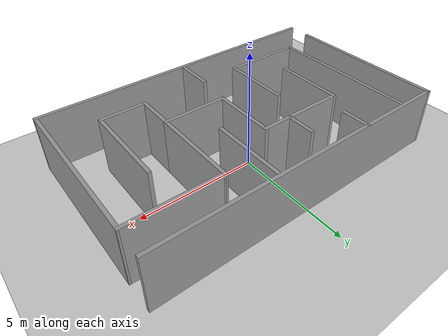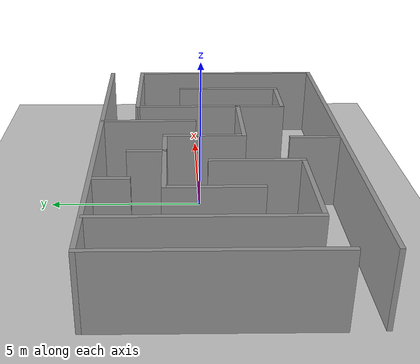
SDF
<sdf version="1.7">
 <world name="default">
  <light name="sun" type="directional">
   <pose>0 0 10 0 -0 0</pose>
   <diffuse>0.8 0.8 0.8 1</diffuse>
   <specular>0.2 0.2 0.2 1</specular>
   <attenuation>
    <range>1000</range>
    <constant>0.9</constant>
    <linear>0.01</linear>
    <quadratic>0.001</quadratic>
   </attenuation>
   <direction>-0.5 0.1 -0.9</direction>
   <spot><inner_angle>0</inner_angle><outer_angle>0</outer_angle><falloff>0</falloff></spot>
  </light>
  <model name="ground_plane">
   <static>1</static>
   <link name="link">
    <collision name="collision">
     <geometry><plane><normal>0 0 1</normal><size>100 100</size></plane></geometry>
     <surface>
      <contact><collide_bitmask>65535</collide_bitmask></contact>
      <friction><ode><mu>100</mu><mu2>50</mu2></ode></friction>
     </surface>
    </collision>
    <visual name="visual">
     <cast_shadows>0</cast_shadows>
     <geometry><plane><normal>0 0 1</normal><size>100 100</size></plane></geometry>
     <material>
      <script><uri>file://media/materials/scripts/gazebo.material</uri><name>Gazebo/Grey</name></script>
     </material>
    </visual>
   </link>
  </model>
  <gravity>0 0 -9.8</gravity>
  <magnetic_field>6e-06 2.3e-05 -4.2e-05</magnetic_field>
  <atmosphere type="adiabatic"/>
  <physics type="ode">
   <max_step_size>0.001</max_step_size>
   <real_time_factor>1</real_time_factor>
   <real_time_update_rate>1000</real_time_update_rate>
  </physics>
  <scene><ambient>0.4 0.4 0.4 1</ambient><background>0.7 0.7 0.7 1</background><shadows>1</shadows></scene>
  <spherical_coordinates>
   <surface_model>EARTH_WGS84</surface_model>
   <latitude_deg>0</latitude_deg>
   <longitude_deg>0</longitude_deg>
   <elevation>0</elevation>
   <heading_deg>0</heading_deg>
  </spherical_coordinates>
  <model name="newWorld">
   <pose>-0.104482 -0.661415 0 0 -0 0</pose>
   <link name="Wall_11">
    <collision name="Wall_11_Collision">
     <geometry><box><size>6.91201 0.15 2.5</size></box></geometry>
     <pose>0 0 1.25 0 -0 0</pose>
    </collision>
    <visual name="Wall_11_Visual">
     <pose>0 0 1.25 0 -0 0</pose>
     <geometry><box><size>6.91201 0.15 2.5</size></box></geometry>
     <material>
      <script><uri>file://media/materials/scripts/gazebo.material</uri><name>Gazebo/Grey</name></script>
      <ambient>1 1 1 1</ambient>
     </material>
     <meta><layer>0</layer></meta>
    </visual>
    <pose>6.56643 -0.597928 0 0 -0 -1.56887</pose>
   </link>
   <link name="Wall_13">
    <collision name="Wall_13_Collision">
     <geometry><box><size>6.5 0.15 2.5</size></box></geometry>
     <pose>0 0 1.25 0 -0 0</pose>
    </collision>
    <visual name="Wall_13_Visual">
     <pose>0 0 1.25 0 -0 0</pose>
     <geometry><box><size>6.5 0.15 2.5</size></box></geometry>
     <material>
      <script><uri>file://media/materials/scripts/gazebo.material</uri><name>Gazebo/Grey</name></script>
      <ambient>1 1 1 1</ambient>
     </material>
     <meta><layer>0</layer></meta>
    </visual>
    <pose>-4.96307 0.735072 0 0 -0 -1.5708</pose>
   </link>
   <link name="Wall_14">
    <collision name="Wall_14_Collision">
     <geometry><box><size>3.5 0.15 2.5</size></box></geometry>
     <pose>0 0 1.25 0 -0 0</pose>
    </collision>
    <visual name="Wall_14_Visual">
     <pose>0 0 1.25 0 -0 0</pose>
     <geometry><box><size>3.5 0.15 2.5</size></box></geometry>
     <material>
      <script><uri>file://media/materials/scripts/gazebo.material</uri><name>Gazebo/Grey</name></script>
      <ambient>1 1 1 1</ambient>
     </material>
     <meta><layer>0</layer></meta>
    </visual>
    <pose>-3.28807 -2.43993 0 0 -0 0</pose>
   </link>
   <link name="Wall_15">
    <collision name="Wall_15_Collision">
     <geometry><box><size>3 0.15 2.5</size></box></geometry>
     <pose>0 0 1.25 0 -0 0</pose>
    </collision>
    <visual name="Wall_15_Visual">
     <pose>0 0 1.25 0 -0 0</pose>
     <geometry><box><size>3 0.15 2.5</size></box></geometry>
     <material>
      <script><uri>file://media/materials/scripts/gazebo.material</uri><name>Gazebo/Grey</name></script>
      <ambient>1 1 1 1</ambient>
     </material>
     <meta><layer>0</layer></meta>
    </visual>
    <pose>-1.61307 -1.01493 0 0 -0 1.5708</pose>
   </link>
   <link name="Wall_17">
    <collision name="Wall_17_Collision">
     <geometry><box><size>3 0.15 2.5</size></box></geometry>
     <pose>0 0 1.25 0 -0 0</pose>
    </collision>
    <visual name="Wall_17_Visual">
     <pose>0 0 1.25 0 -0 0</pose>
     <geometry><box><size>3 0.15 2.5</size></box></geometry>
     <material>
      <script><uri>file://media/materials/scripts/gazebo.material</uri><name>Gazebo/Grey</name></script>
      <ambient>1 1 1 1</ambient>
     </material>
     <meta><layer>0</layer></meta>
    </visual>
    <pose>-3.33007 0.390072 0 0 -0 1.5708</pose>
   </link>
   <link name="Wall_18">
    <collision name="Wall_18_Collision">
     <geometry><box><size>3.75 0.15 2.5</size></box></geometry>
     <pose>0 0 1.25 0 -0 0</pose>
    </collision>
    <visual name="Wall_18_Visual">
     <pose>0 0 1.25 0 -0 0</pose>
     <geometry><box><size>3.75 0.15 2.5</size></box></geometry>
     <material>
      <script><uri>file://media/materials/scripts/gazebo.material</uri><name>Gazebo/Grey</name></script>
      <ambient>1 1 1 1</ambient>
     </material>
     <meta><layer>0</layer></meta>
    </visual>
    <pose>-1.53007 1.81507 0 0 -0 0</pose>
   </link>
   <link name="Wall_22">
    <collision name="Wall_22_Collision">
     <geometry><box><size>1.25 0.15 2.5</size></box></geometry>
     <pose>0 0 1.25 0 -0 0</pose>
    </collision>
    <visual name="Wall_22_Visual">
     <pose>0 0 1.25 0 -0 0</pose>
     <geometry><box><size>1.25 0.15 2.5</size></box></geometry>
     <material>
      <script><uri>file://media/materials/scripts/gazebo.material</uri><name>Gazebo/Grey</name></script>
      <ambient>1 1 1 1</ambient>
     </material>
     <meta><layer>0</layer></meta>
    </visual>
    <pose>-2.77807 3.40607 0 0 -0 -1.5708</pose>
   </link>
   <link name="Wall_25">
    <collision name="Wall_25_Collision">
     <geometry><box><size>1.75 0.15 2.5</size></box></geometry>
     <pose>0 0 1.25 0 -0 0</pose>
    </collision>
    <visual name="Wall_25_Visual">
     <pose>0 0 1.25 0 -0 0</pose>
     <geometry><box><size>1.75 0.15 2.5</size></box></geometry>
     <material>
      <script><uri>file://media/materials/scripts/gazebo.material</uri><name>Gazebo/Grey</name></script>
      <ambient>1 1 1 1</ambient>
     </material>
     <meta><layer>0</layer></meta>
    </visual>
    <pose>0.096928 -3.13293 0 0 -0 1.5708</pose>
   </link>
   <link name="Wall_27">
    <collision name="Wall_27_Collision">
     <geometry><box><size>2.75 0.15 2.5</size></box></geometry>
     <pose>0 0 1.25 0 -0 0</pose>
    </collision>
    <visual name="Wall_27_Visual">
     <pose>0 0 1.25 0 -0 0</pose>
     <geometry><box><size>2.75 0.15 2.5</size></box></geometry>
     <material>
      <script><uri>file://media/materials/scripts/gazebo.material</uri><name>Gazebo/Grey</name></script>
      <ambient>1 1 1 1</ambient>
     </material>
     <meta><layer>0</layer></meta>
    </visual>
    <pose>0.269928 0.515072 0 0 -0 -1.5708</pose>
   </link>
   <link name="Wall_28">
    <collision name="Wall_28_Collision">
     <geometry><box><size>2.75 0.15 2.5</size></box></geometry>
     <pose>0 0 1.25 0 -0 0</pose>
    </collision>
    <visual name="Wall_28_Visual">
     <pose>0 0 1.25 0 -0 0</pose>
     <geometry><box><size>2.75 0.15 2.5</size></box></geometry>
     <material>
      <script><uri>file://media/materials/scripts/gazebo.material</uri><name>Gazebo/Grey</name></script>
      <ambient>1 1 1 1</ambient>
     </material>
     <meta><layer>0</layer></meta>
    </visual>
    <pose>1.56993 -0.784928 0 0 -0 0</pose>
   </link>
   <link name="Wall_29">
    <collision name="Wall_29_Collision">
     <geometry><box><size>3.75 0.15 2.5</size></box></geometry>
     <pose>0 0 1.25 0 -0 0</pose>
    </collision>
    <visual name="Wall_29_Visual">
     <pose>0 0 1.25 0 -0 0</pose>
     <geometry><box><size>3.75 0.15 2.5</size></box></geometry>
     <material>
      <script><uri>file://media/materials/scripts/gazebo.material</uri><name>Gazebo/Grey</name></script>
      <ambient>1 1 1 1</ambient>
     </material>
     <meta><layer>0</layer></meta>
    </visual>
    <pose>2.86993 1.01507 0 0 -0 1.5708</pose>
   </link>
   <link name="Wall_30">
    <collision name="Wall_30_Collision">
     <geometry><box><size>3.84014 0.15 2.5</size></box></geometry>
     <pose>0 0 1.25 0 -0 0</pose>
    </collision>
    <visual name="Wall_30_Visual">
     <pose>0 0 1.25 0 -0 0</pose>
     <geometry><box><size>3.84014 0.15 2.5</size></box></geometry>
     <material>
      <script><uri>file://media/materials/scripts/gazebo.material</uri><name>Gazebo/Grey</name></script>
      <ambient>1 1 1 1</ambient>
     </material>
     <meta><layer>0</layer></meta>
    </visual>
    <pose>4.71493 2.79907 0 0 -0 -0.008672</pose>
   </link>
   <link name="Wall_32">
    <collision name="Wall_32_Collision">
     <geometry><box><size>1.75 0.15 2.5</size></box></geometry>
     <pose>0 0 1.25 0 -0 0</pose>
    </collision>
    <visual name="Wall_32_Visual">
     <pose>0 0 1.25 0 -0 0</pose>
     <geometry><box><size>1.75 0.15 2.5</size></box></geometry>
     <material>
      <script><uri>file://media/materials/scripts/gazebo.material</uri><name>Gazebo/Grey</name></script>
      <ambient>1 1 1 1</ambient>
     </material>
     <meta><layer>0</layer></meta>
    </visual>
    <pose>2.86993 -1.58493 0 0 -0 -1.5708</pose>
   </link>
   <link name="Wall_33">
    <collision name="Wall_33_Collision">
     <geometry><box><size>2 0.15 2.5</size></box></geometry>
     <pose>0 0 1.25 0 -0 0</pose>
    </collision>
    <visual name="Wall_33_Visual">
     <pose>0 0 1.25 0 -0 0</pose>
     <geometry><box><size>2 0.15 2.5</size></box></geometry>
     <material>
      <script><uri>file://media/materials/scripts/gazebo.material</uri><name>Gazebo/Grey</name></script>
      <ambient>1 1 1 1</ambient>
     </material>
     <meta><layer>0</layer></meta>
    </visual>
    <pose>3.79493 -2.38493 0 0 -0 0</pose>
   </link>
   <link name="Wall_34">
    <collision name="Wall_34_Collision">
     <geometry><box><size>3.75 0.15 2.5</size></box></geometry>
     <pose>0 0 1.25 0 -0 0</pose>
    </collision>
    <visual name="Wall_34_Visual">
     <pose>0 0 1.25 0 -0 0</pose>
     <geometry><box><size>3.75 0.15 2.5</size></box></geometry>
     <material>
      <script><uri>file://media/materials/scripts/gazebo.material</uri><name>Gazebo/Grey</name></script>
      <ambient>1 1 1 1</ambient>
     </material>
     <meta><layer>0</layer></meta>
    </visual>
    <pose>4.71993 -0.584928 0 0 -0 1.5708</pose>
   </link>
   <link name="Wall_38">
    <collision name="Wall_38_Collision">
     <geometry><box><size>3.25 0.15 2.5</size></box></geometry>
     <pose>0 0 1.25 0 -0 0</pose>
    </collision>
    <visual name="Wall_38_Visual">
     <pose>0 0 1.25 0 -0 0</pose>
     <geometry><box><size>3.25 0.15 2.5</size></box></geometry>
     <material>
      <script><uri>file://media/materials/scripts/gazebo.material</uri><name>Gazebo/Grey</name></script>
      <ambient>1 1 1 1</ambient>
     </material>
     <meta><layer>0</layer></meta>
    </visual>
    <pose>1.52293 2.38307 0 0 -0 -1.5708</pose>
   </link>
   <link name="Wall_4">
    <collision name="Wall_4_Collision">
     <geometry><box><size>7 0.15 2.5</size></box></geometry>
     <pose>0 0 1.25 0 -0 0</pose>
    </collision>
    <visual name="Wall_4_Visual">
     <pose>0 0 1.25 0 -0 0</pose>
     <geometry><box><size>7 0.15 2.5</size></box></geometry>
     <material>
      <script><uri>file://media/materials/scripts/gazebo.material</uri><name>Gazebo/Grey</name></script>
      <ambient>1 1 1 1</ambient>
     </material>
     <meta><layer>0</layer></meta>
    </visual>
    <pose>-6.57307 0.554072 0 0 -0 -1.5708</pose>
   </link>
   <link name="Wall_40">
    <collision name="Wall_40_Collision">
     <geometry><box><size>1.25 0.15 2.5</size></box></geometry>
     <pose>0 0 1.25 0 -0 0</pose>
    </collision>
    <visual name="Wall_40_Visual">
     <pose>0 0 1.25 0 -0 0</pose>
     <geometry><box><size>1.25 0.15 2.5</size></box></geometry>
     <material>
      <script><uri>file://media/materials/scripts/gazebo.material</uri><name>Gazebo/Grey</name></script>
      <ambient>1 1 1 1</ambient>
     </material>
     <meta><layer>0</layer></meta>
    </visual>
    <pose>-0.915072 2.39007 0 0 -0 1.5708</pose>
   </link>
   <link name="Wall_7">
    <collision name="Wall_7_Collision">
     <geometry><box><size>13.25 0.15 2.5</size></box></geometry>
     <pose>0 0 1.25 0 -0 0</pose>
    </collision>
    <visual name="Wall_7_Visual">
     <pose>0 0 1.25 0 -0 0</pose>
     <geometry><box><size>13.25 0.15 2.5</size></box></geometry>
     <material>
      <script><uri>file://media/materials/scripts/gazebo.material</uri><name>Gazebo/Grey</name></script>
      <ambient>1 1 1 1</ambient>
     </material>
     <meta><layer>0</layer></meta>
    </visual>
    <pose>0.022928 -3.97893 0 0 -0 0</pose>
   </link>
   <link name="Wall_9">
    <collision name="Wall_9_Collision">
     <geometry><box><size>13.25 0.15 2.5</size></box></geometry>
     <pose>0 0 1.25 0 -0 0</pose>
    </collision>
    <visual name="Wall_9_Visual">
     <pose>0 0 1.25 0 -0 0</pose>
     <geometry><box><size>13.25 0.15 2.5</size></box></geometry>
     <material>
      <script><uri>file://media/materials/scripts/gazebo.material</uri><name>Gazebo/Grey</name></script>
      <ambient>1 1 1 1</ambient>
     </material>
     <meta><layer>0</layer></meta>
    </visual>
    <pose>-0.023072 3.97907 0 0 -0 0</pose>
   </link>
   <static>1</static>
  </model>
 </world>
</sdf>
